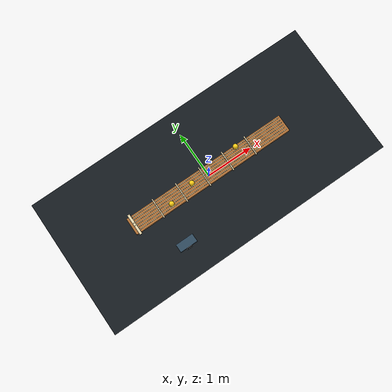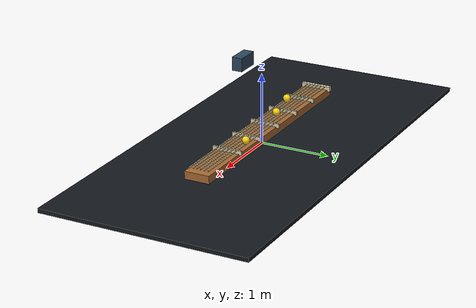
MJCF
<mujoco model="portfolio_guitar_scale_rig">
  <compiler angle="radian" autolimits="true" />
  <option timestep="0.01" gravity="0 0 -9.81" />

  <asset>
    <material name="desk_mat" rgba="0.08 0.1 0.12 1" />
    <material name="wood_mat" rgba="0.66 0.42 0.2 1" />
    <material name="fret_mat" rgba="0.9 0.84 0.68 1" />
    <material name="note_mat" rgba="0.98 0.8 0.08 1" />
    <material name="camera_mat" rgba="0.18 0.28 0.36 1" />
  </asset>

  <worldbody>
    <light name="key" pos="0 -3.2 4.2" dir="0.1 0.2 -1" diffuse="1 0.96 0.84" />
    <camera name="overview" pos="1.8 -4.2 2.6" xyaxes="0.92 0.39 0 -0.25 0.58 0.78" />

    <geom name="desk" type="box" pos="0 0 -0.03" size="3.2 1.5 0.03" material="desk_mat" />

    <body name="guitar_rig" pos="0 0 0.1">
      <geom name="fretboard" type="box" pos="0 0 0.08" size="1.8 0.18 0.055" material="wood_mat" density="160" />
      <geom name="nut" type="box" pos="-1.72 0 0.15" size="0.025 0.22 0.035" material="fret_mat" density="90" />
      <geom name="fret_1" type="box" pos="-1.18 0 0.152" size="0.012 0.215 0.032" material="fret_mat" density="90" />
      <geom name="fret_2" type="box" pos="-0.64 0 0.152" size="0.012 0.215 0.032" material="fret_mat" density="90" />
      <geom name="fret_3" type="box" pos="-0.1 0 0.152" size="0.012 0.215 0.032" material="fret_mat" density="90" />
      <geom name="fret_4" type="box" pos="0.44 0 0.152" size="0.012 0.215 0.032" material="fret_mat" density="90" />
      <geom name="fret_5" type="box" pos="0.98 0 0.152" size="0.012 0.215 0.032" material="fret_mat" density="90" />
      <geom name="string_1" type="box" pos="0 -0.135 0.174" size="1.75 0.006 0.006" material="fret_mat" density="20" />
      <geom name="string_2" type="box" pos="0 -0.08 0.178" size="1.75 0.006 0.006" material="fret_mat" density="20" />
      <geom name="string_3" type="box" pos="0 -0.025 0.18" size="1.75 0.006 0.006" material="fret_mat" density="20" />
      <geom name="string_4" type="box" pos="0 0.03 0.18" size="1.75 0.006 0.006" material="fret_mat" density="20" />
      <geom name="string_5" type="box" pos="0 0.085 0.178" size="1.75 0.006 0.006" material="fret_mat" density="20" />
      <geom name="string_6" type="box" pos="0 0.14 0.174" size="1.75 0.006 0.006" material="fret_mat" density="20" />
      <geom name="note_a" type="sphere" pos="-0.92 -0.08 0.23" size="0.055" material="note_mat" density="20" />
      <geom name="note_c" type="sphere" pos="-0.38 0.03 0.23" size="0.055" material="note_mat" density="20" />
      <geom name="note_e" type="sphere" pos="0.72 0.14 0.23" size="0.055" material="note_mat" density="20" />
      <geom name="webcam" type="box" pos="-1.1 -0.88 0.6" size="0.18 0.08 0.1" material="camera_mat" density="100" />
      <geom name="lens" type="cylinder" pos="-1.1 -0.97 0.6" quat="0.7071068 0.7071068 0 0" size="0.055 0.02" rgba="0.04 0.05 0.06 1" density="80" />
    </body>
  </worldbody>
</mujoco>
